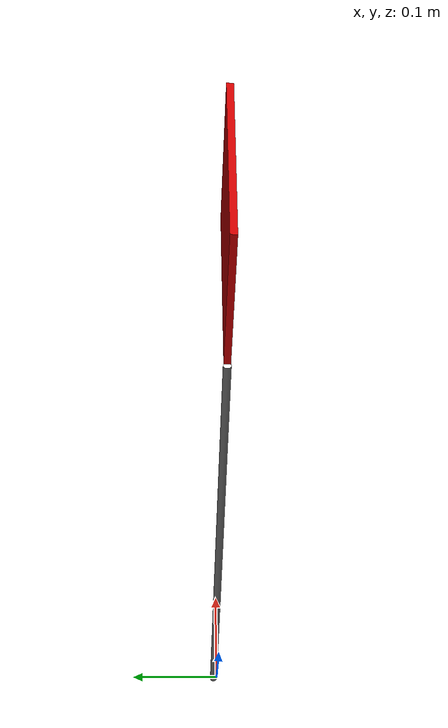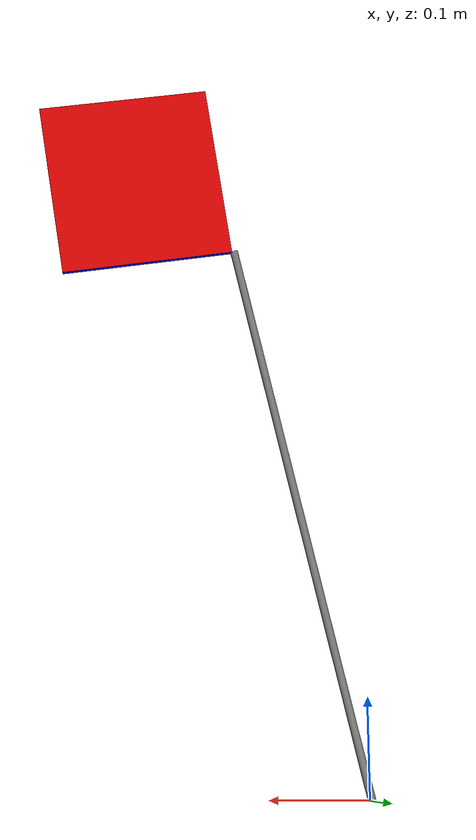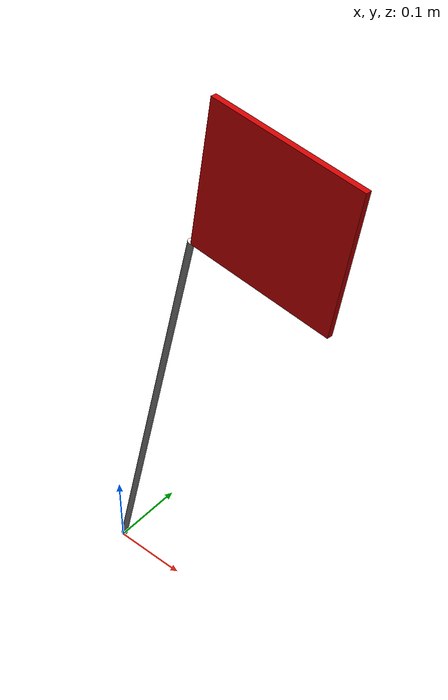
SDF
<?xml version='1.0'?>
<sdf version='1.4'>
    <model name="red_flag">
        <static>true</static>
	    <link name="link">
		<collision name='collision'>
		    <geometry>
			<mesh>
			    <uri>model://red_flag/meshes/red_flag.dae</uri>
			</mesh>
		    </geometry>
		</collision>
		<visual name='visual'>
		    <geometry>
			<mesh>
			    <uri>model://red_flag/meshes/red_flag.dae</uri>
			</mesh>
		    </geometry>
		</visual>
	    </link>
    </model>
</sdf>
